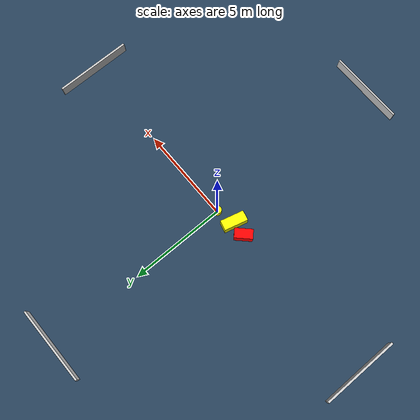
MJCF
<?xml version="1.0" ?>
<mujoco model="generated_environment">
  <option timestep="0.01" integrator="RK4" cone="elliptic"/>
  <default>
    <geom density="1"/>
  </default>
  <asset>
    <texture builtin="gradient" height="3072" name="skybox" rgb1="0.3 0.5 0.7" rgb2="0 0 0" type="skybox" width="512"/>
    <texture builtin="checker" height="300" name="groundplane" rgb1="0.2 0.3 0.4" rgb2="0.1 0.2 0.3" type="2d" width="300"/>
    <material name="groundplane" reflectance="0.2" texrepeat="5 5" texture="groundplane"/>
  </asset>
  <worldbody>
    <light dir="0 0 -1" directional="true" pos="0 0 1.5"/>
    <geom condim="3" friction="0.5 0.005 0.001" material="groundplane" name="floor" pos="0 0 0" size="0 0 0.05" type="plane"/>
    <body name="walls">
      <geom name="wall_1" condim="4" pos="-10.0 0.0 0.3" rgba="0.800000011920929 0.800000011920929 0.800000011920929 1.0" size="0.05 2.0 0.3" type="box"/>
      <geom name="wall_2" condim="4" pos="10.0 0.0 0.3" rgba="0.800000011920929 0.800000011920929 0.800000011920929 1.0" size="0.05 2.0 0.3" type="box"/>
      <geom name="wall_3" condim="4" pos="0.0 -10.0 0.3" rgba="0.800000011920929 0.800000011920929 0.800000011920929 1.0" size="2.0 0.05 0.3" type="box"/>
      <geom name="wall_4" condim="4" pos="0.0 10.0 0.3" rgba="0.800000011920929 0.800000011920929 0.800000011920929 1.0" size="2.0 0.05 0.3" type="box"/>
    </body>
    <body name="robot">
      <joint name="joint_x" type="slide" pos="0 0 0" axis="1 0 0"/>
      <joint name="joint_y" type="slide" pos="0 0 0" axis="0 1 0"/>
      <geom name="robot" type="cylinder" pos="0.0 0.0 0.2" size="0.2 0.2 0.0" mass="5.0" friction="1.0 0.005 0.0001" condim="4" rgba="1.0 1.0 0.0 1.0"/>
    </body>
    <body name="obstacle_1_movable">
      <geom name="obstacle_1_movable" condim="4" pos="-0.9586730275466854 -0.22581403585985335 0.3" euler="0 0 165.17879015271143" friction="0.0 0.005 0.001" rgba="1.0 1.0 0.0 1.0" size="0.261954768628884 0.6124886890994592 0.3" type="box" mass="0.1"/>
      <joint type="free"/>
    </body>
    <body name="obstacle_2_static">
      <geom name="obstacle_2_static" condim="4" pos="-1.7424735422562696 -0.16151337746246885 0.3" euler="0 0 315.35943444907565" friction="0.0 0.005 0.001" rgba="1.0 0.0 0.0 1.0" size="0.24821116835888482 0.46013326936364507 0.3" type="box"/>
    </body>
  </worldbody>
  <actuator>
    <motor name="actuator_x" joint="joint_x" gear="1" ctrlrange="-1 1"/>
    <motor name="actuator_y" joint="joint_y" gear="1" ctrlrange="-1 1"/>
  </actuator>
</mujoco>
